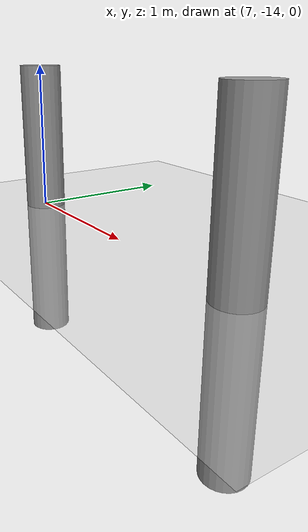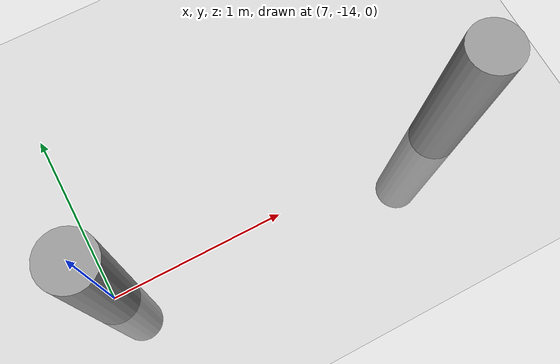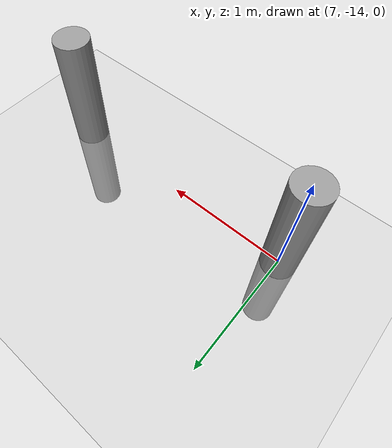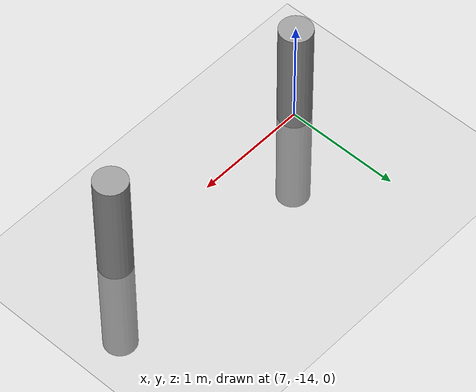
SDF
<sdf version="1.6">
 <world name="default">
  <model name="ground_plane">
   <static>1</static>
   <link name="link">
    <collision name="collision">
     <geometry><plane><normal>0 0 1</normal><size>100 100</size></plane></geometry>
     <surface><friction><ode><mu>100</mu><mu2>50</mu2></ode></friction></surface>
    </collision>
    <visual name="visual">
     <cast_shadows>0</cast_shadows>
     <geometry><plane><normal>0 0 1</normal><size>100 100</size></plane></geometry>
     <material>
      <script><uri>file://media/materials/scripts/gazebo.material</uri><name>Gazebo/Grey</name></script>
     </material>
    </visual>
   </link>
  </model>
  <model name="my_cylinder014_clone_12">
   <pose>9 -14 0 0 -0 0</pose>
   <link name="my_cylinder014::link">
    <inertial>
     <mass>1</mass>
     <inertia><ixx>0.145833</ixx><ixy>0</ixy><ixz>0</ixz><iyy>0.145833</iyy><iyz>0</iyz><izz>0.125</izz></inertia>
    </inertial>
    <visual name="visual">
     <geometry><cylinder><radius>0.14</radius><length>2</length></cylinder></geometry>
     <material>
      <script><name>Gazebo/Grey</name><uri>file://media/materials/scripts/gazebo.material</uri></script>
      <ambient>0.3 0.3 0.3 1</ambient>
      <diffuse>0.7 0.7 0.7 1</diffuse>
      <specular>1 0.01 0.01 1</specular>
      <emissive>0 0 0 1</emissive>
      <shader type="vertex"><normal_map>__default__</normal_map></shader>
     </material>
    </visual>
    <collision name="collision">
     <geometry><cylinder><radius>0.14</radius><length>2</length></cylinder></geometry>
     <surface>
      <friction>
       <ode><mu>1</mu><mu2>1</mu2><fdir1>0 0 0</fdir1><slip1>0</slip1><slip2>0</slip2></ode>
       <torsional>
        <coefficient>1</coefficient>
        <patch_radius>0</patch_radius>
        <surface_radius>0</surface_radius>
        <use_patch_radius>1</use_patch_radius>
        <ode><slip>0</slip></ode>
       </torsional>
      </friction>
      <bounce><restitution_coefficient>0</restitution_coefficient><threshold>1e+06</threshold></bounce>
      <contact>
       <collide_without_contact>0</collide_without_contact>
       <collide_without_contact_bitmask>1</collide_without_contact_bitmask>
       <collide_bitmask>1</collide_bitmask>
       <ode>
        <soft_cfm>0</soft_cfm>
        <soft_erp>0.2</soft_erp>
        <kp>1e+13</kp>
        <kd>1</kd>
        <max_vel>0.01</max_vel>
        <min_depth>0</min_depth>
       </ode>
       <bullet>
        <split_impulse>1</split_impulse>
        <split_impulse_penetration_threshold>-0.01</split_impulse_penetration_threshold>
        <soft_cfm>0</soft_cfm>
        <soft_erp>0.2</soft_erp>
        <kp>1e+13</kp>
        <kd>1</kd>
       </bullet>
      </contact>
     </surface>
    </collision>
   </link>
   <static>1</static>
  </model>
  <model name="my_cylinder014_clone_12">
   <pose>9 -14 0 0 -0 0</pose>
   <link name="my_cylinder014::link">
    <inertial>
     <mass>1</mass>
     <inertia><ixx>0.145833</ixx><ixy>0</ixy><ixz>0</ixz><iyy>0.145833</iyy><iyz>0</iyz><izz>0.125</izz></inertia>
    </inertial>
    <visual name="visual">
     <geometry><cylinder><radius>0.14</radius><length>2</length></cylinder></geometry>
     <material>
      <script><name>Gazebo/Grey</name><uri>file://media/materials/scripts/gazebo.material</uri></script>
      <ambient>0.3 0.3 0.3 1</ambient>
      <diffuse>0.7 0.7 0.7 1</diffuse>
      <specular>1 0.01 0.01 1</specular>
      <emissive>0 0 0 1</emissive>
      <shader type="vertex"><normal_map>__default__</normal_map></shader>
     </material>
    </visual>
    <collision name="collision">
     <geometry><cylinder><radius>0.14</radius><length>2</length></cylinder></geometry>
     <surface>
      <friction>
       <ode><mu>1</mu><mu2>1</mu2><fdir1>0 0 0</fdir1><slip1>0</slip1><slip2>0</slip2></ode>
       <torsional>
        <coefficient>1</coefficient>
        <patch_radius>0</patch_radius>
        <surface_radius>0</surface_radius>
        <use_patch_radius>1</use_patch_radius>
        <ode><slip>0</slip></ode>
       </torsional>
      </friction>
      <bounce><restitution_coefficient>0</restitution_coefficient><threshold>1e+06</threshold></bounce>
      <contact>
       <collide_without_contact>0</collide_without_contact>
       <collide_without_contact_bitmask>1</collide_without_contact_bitmask>
       <collide_bitmask>1</collide_bitmask>
       <ode>
        <soft_cfm>0</soft_cfm>
        <soft_erp>0.2</soft_erp>
        <kp>1e+13</kp>
        <kd>1</kd>
        <max_vel>0.01</max_vel>
        <min_depth>0</min_depth>
       </ode>
       <bullet>
        <split_impulse>1</split_impulse>
        <split_impulse_penetration_threshold>-0.01</split_impulse_penetration_threshold>
        <soft_cfm>0</soft_cfm>
        <soft_erp>0.2</soft_erp>
        <kp>1e+13</kp>
        <kd>1</kd>
       </bullet>
      </contact>
     </surface>
    </collision>
   </link>
   <static>1</static>
  </model>
  <model name="my_cylinder014_clone_11">
   <pose>7 -14 0 0 -0 0</pose>
   <link name="my_cylinder014::link">
    <inertial>
     <mass>1</mass>
     <inertia><ixx>0.145833</ixx><ixy>0</ixy><ixz>0</ixz><iyy>0.145833</iyy><iyz>0</iyz><izz>0.125</izz></inertia>
    </inertial>
    <visual name="visual">
     <geometry><cylinder><radius>0.14</radius><length>2</length></cylinder></geometry>
     <material>
      <script><name>Gazebo/Grey</name><uri>file://media/materials/scripts/gazebo.material</uri></script>
      <ambient>0.3 0.3 0.3 1</ambient>
      <diffuse>0.7 0.7 0.7 1</diffuse>
      <specular>1 0.01 0.01 1</specular>
      <emissive>0 0 0 1</emissive>
      <shader type="vertex"><normal_map>__default__</normal_map></shader>
     </material>
    </visual>
    <collision name="collision">
     <geometry><cylinder><radius>0.14</radius><length>2</length></cylinder></geometry>
     <surface>
      <friction>
       <ode><mu>1</mu><mu2>1</mu2><fdir1>0 0 0</fdir1><slip1>0</slip1><slip2>0</slip2></ode>
       <torsional>
        <coefficient>1</coefficient>
        <patch_radius>0</patch_radius>
        <surface_radius>0</surface_radius>
        <use_patch_radius>1</use_patch_radius>
        <ode><slip>0</slip></ode>
       </torsional>
      </friction>
      <bounce><restitution_coefficient>0</restitution_coefficient><threshold>1e+06</threshold></bounce>
      <contact>
       <collide_without_contact>0</collide_without_contact>
       <collide_without_contact_bitmask>1</collide_without_contact_bitmask>
       <collide_bitmask>1</collide_bitmask>
       <ode>
        <soft_cfm>0</soft_cfm>
        <soft_erp>0.2</soft_erp>
        <kp>1e+13</kp>
        <kd>1</kd>
        <max_vel>0.01</max_vel>
        <min_depth>0</min_depth>
       </ode>
       <bullet>
        <split_impulse>1</split_impulse>
        <split_impulse_penetration_threshold>-0.01</split_impulse_penetration_threshold>
        <soft_cfm>0</soft_cfm>
        <soft_erp>0.2</soft_erp>
        <kp>1e+13</kp>
        <kd>1</kd>
       </bullet>
      </contact>
     </surface>
    </collision>
   </link>
   <static>1</static>
  </model>
 </world>
</sdf>
